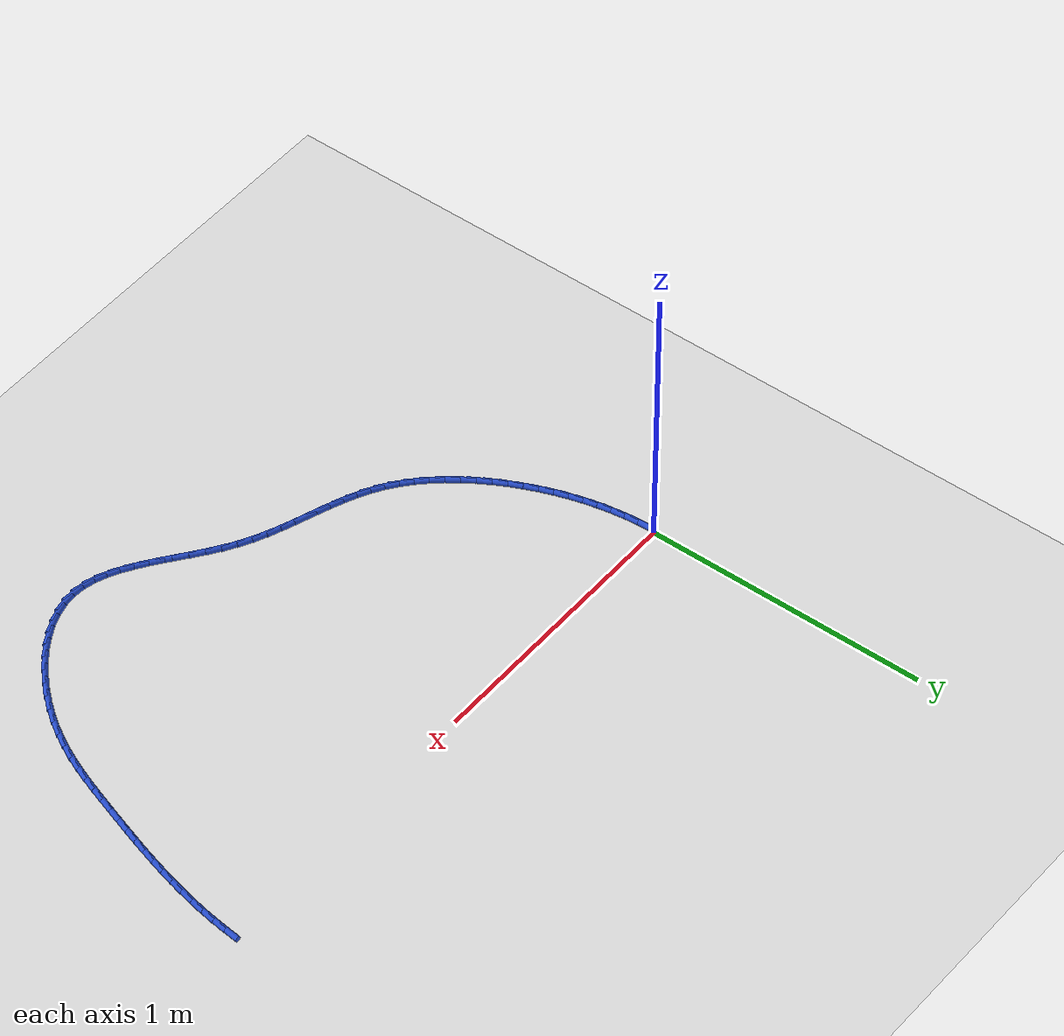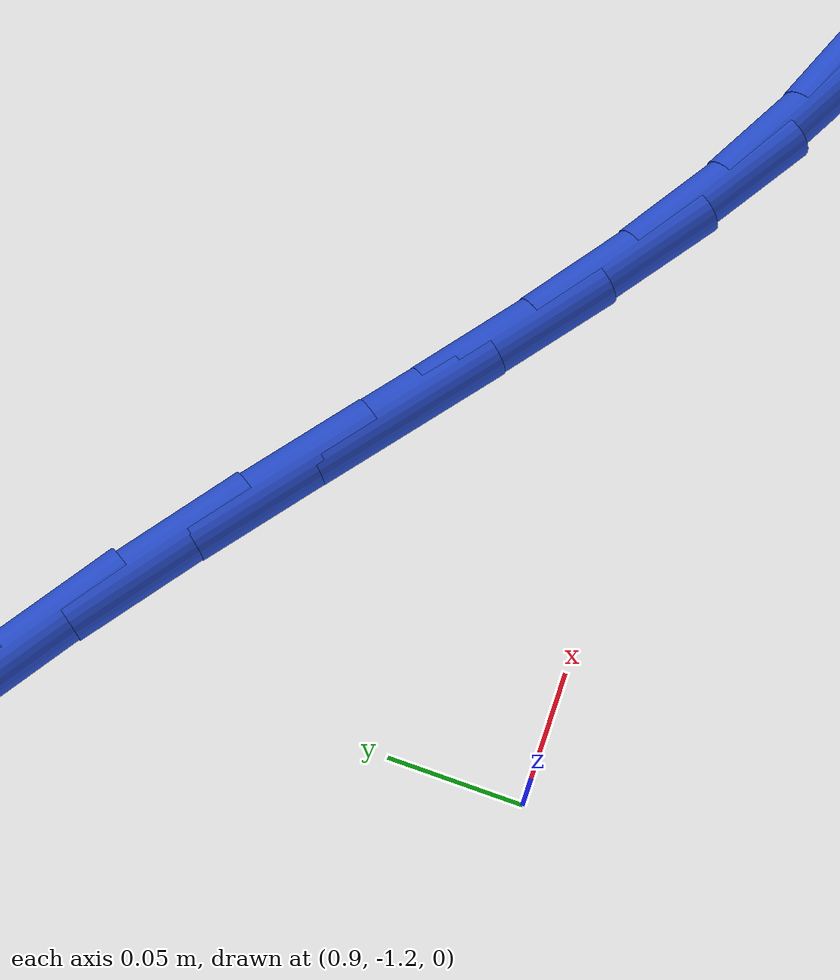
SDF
<sdf version="1.6">
 <world name="default">
  <model name="ground_plane">
   <static>1</static>
   <link name="link">
    <collision name="collision">
     <geometry><plane><normal>0 0 1</normal><size>100 100</size></plane></geometry>
     <surface><friction><ode><mu>100</mu><mu2>50</mu2></ode></friction></surface>
    </collision>
    <visual name="visual">
     <cast_shadows>0</cast_shadows>
     <geometry><plane><normal>0 0 1</normal><size>100 100</size></plane></geometry>
     <material>
      <script><uri>file://media/materials/scripts/gazebo.material</uri><name>Gazebo/WhiteGlow</name></script>
     </material>
    </visual>
   </link>
  </model>
  <model name="line">
   <link name="link_69">
    <pose>2.0538221448049563 -0.010436219579469096 0.01 0 1.57 1.4522254163975166</pose>
    <collision name="collision">
     <geometry><cylinder><radius>0.01</radius><length>0.08</length></cylinder></geometry>
    </collision>
    <visual name="visual">
     <material>
      <script><name>Gazebo/Blue</name><uri>file://media/materials/scripts/gazebo.material</uri></script>
     </material>
     <geometry><cylinder><radius>0.01</radius><length>0.08</length></cylinder></geometry>
    </visual>
   </link>
   <link name="link_70">
    <pose>2.047916145970382 -0.060012420350824346 0.01 0 1.57 1.4209821458318201</pose>
    <collision name="collision">
     <geometry><cylinder><radius>0.01</radius><length>0.08</length></cylinder></geometry>
    </collision>
    <visual name="visual">
     <material>
      <script><name>Gazebo/Blue</name><uri>file://media/materials/scripts/gazebo.material</uri></script>
     </material>
     <geometry><cylinder><radius>0.01</radius><length>0.08</length></cylinder></geometry>
    </visual>
   </link>
   <link name="link_71">
    <pose>2.0405185952522613 -0.1090206212282597 0.01 0 1.57 1.39201190825248</pose>
    <collision name="collision">
     <geometry><cylinder><radius>0.01</radius><length>0.08</length></cylinder></geometry>
    </collision>
    <visual name="visual">
     <material>
      <script><name>Gazebo/Blue</name><uri>file://media/materials/scripts/gazebo.material</uri></script>
     </material>
     <geometry><cylinder><radius>0.01</radius><length>0.08</length></cylinder></geometry>
    </visual>
   </link>
   <link name="link_72">
    <pose>2.0317578812958765 -0.15749896409623826 0.01 0 1.57 1.3654353971454807</pose>
    <collision name="collision">
     <geometry><cylinder><radius>0.01</radius><length>0.08</length></cylinder></geometry>
    </collision>
    <visual name="visual">
     <material>
      <script><name>Gazebo/Blue</name><uri>file://media/materials/scripts/gazebo.material</uri></script>
     </material>
     <geometry><cylinder><radius>0.01</radius><length>0.08</length></cylinder></geometry>
    </visual>
   </link>
   <link name="link_73">
    <pose>2.0217623927465103 -0.2054855908392234 0.01 0 1.57 1.3413483488446771</pose>
    <collision name="collision">
     <geometry><cylinder><radius>0.01</radius><length>0.08</length></cylinder></geometry>
    </collision>
    <visual name="visual">
     <material>
      <script><name>Gazebo/Blue</name><uri>file://media/materials/scripts/gazebo.material</uri></script>
     </material>
     <geometry><cylinder><radius>0.01</radius><length>0.08</length></cylinder></geometry>
    </visual>
   </link>
   <link name="link_74">
    <pose>2.010660518249443 -0.2530186433416763 0.01 0 1.57 1.3198248910323733</pose>
    <collision name="collision">
     <geometry><cylinder><radius>0.01</radius><length>0.08</length></cylinder></geometry>
    </collision>
    <visual name="visual">
     <material>
      <script><name>Gazebo/Blue</name><uri>file://media/materials/scripts/gazebo.material</uri></script>
     </material>
     <geometry><cylinder><radius>0.01</radius><length>0.08</length></cylinder></geometry>
    </visual>
   </link>
   <link name="link_75">
    <pose>1.9985806464499571 -0.3001362634880604 0.01 0 1.57 1.3009212516885558</pose>
    <collision name="collision">
     <geometry><cylinder><radius>0.01</radius><length>0.08</length></cylinder></geometry>
    </collision>
    <visual name="visual">
     <material>
      <script><name>Gazebo/Blue</name><uri>file://media/materials/scripts/gazebo.material</uri></script>
     </material>
     <geometry><cylinder><radius>0.01</radius><length>0.08</length></cylinder></geometry>
    </visual>
   </link>
   <link name="link_76">
    <pose>1.9856511659933358 -0.3468765931628384 0.01 0 1.57 1.284679543516372</pose>
    <collision name="collision">
     <geometry><cylinder><radius>0.01</radius><length>0.08</length></cylinder></geometry>
    </collision>
    <visual name="visual">
     <material>
      <script><name>Gazebo/Blue</name><uri>file://media/materials/scripts/gazebo.material</uri></script>
     </material>
     <geometry><cylinder><radius>0.01</radius><length>0.08</length></cylinder></geometry>
    </visual>
   </link>
   <link name="link_77">
    <pose>1.9720004655248597 -0.393277774250473 0.01 0 1.57 1.2711313987236612</pose>
    <collision name="collision">
     <geometry><cylinder><radius>0.01</radius><length>0.08</length></cylinder></geometry>
    </collision>
    <visual name="visual">
     <material>
      <script><name>Gazebo/Blue</name><uri>file://media/materials/scripts/gazebo.material</uri></script>
     </material>
     <geometry><cylinder><radius>0.01</radius><length>0.08</length></cylinder></geometry>
    </visual>
   </link>
   <link name="link_78">
    <pose>1.957756933689811 -0.43937794863542773 0.01 0 1.57 1.2603012883070623</pose>
    <collision name="collision">
     <geometry><cylinder><radius>0.01</radius><length>0.08</length></cylinder></geometry>
    </collision>
    <visual name="visual">
     <material>
      <script><name>Gazebo/Blue</name><uri>file://media/materials/scripts/gazebo.material</uri></script>
     </material>
     <geometry><cylinder><radius>0.01</radius><length>0.08</length></cylinder></geometry>
    </visual>
   </link>
   <link name="link_79">
    <pose>1.943048959133472 -0.4852152582021636 0.01 0 1.57 1.2522094112883007</pose>
    <collision name="collision">
     <geometry><cylinder><radius>0.01</radius><length>0.08</length></cylinder></geometry>
    </collision>
    <visual name="visual">
     <material>
      <script><name>Gazebo/Blue</name><uri>file://media/materials/scripts/gazebo.material</uri></script>
     </material>
     <geometry><cylinder><radius>0.01</radius><length>0.08</length></cylinder></geometry>
    </visual>
   </link>
   <link name="link_80">
    <pose>1.9280049305011242 -0.530827844835144 0.01 0 1.57 1.24687407889715</pose>
    <collision name="collision">
     <geometry><cylinder><radius>0.01</radius><length>0.08</length></cylinder></geometry>
    </collision>
    <visual name="visual">
     <material>
      <script><name>Gazebo/Blue</name><uri>file://media/materials/scripts/gazebo.material</uri></script>
     </material>
     <geometry><cylinder><radius>0.01</radius><length>0.08</length></cylinder></geometry>
    </visual>
   </link>
   <link name="link_81">
    <pose>1.9127532364380497 -0.5762538504188318 0.01 0 1.57 1.2441341679801499</pose>
    <collision name="collision">
     <geometry><cylinder><radius>0.01</radius><length>0.08</length></cylinder></geometry>
    </collision>
    <visual name="visual">
     <material>
      <script><name>Gazebo/Blue</name><uri>file://media/materials/scripts/gazebo.material</uri></script>
     </material>
     <geometry><cylinder><radius>0.01</radius><length>0.08</length></cylinder></geometry>
    </visual>
   </link>
   <link name="link_82">
    <pose>1.897413605455581 -0.6215302558179849 0.01 0 1.57 1.2385742932887691</pose>
    <collision name="collision">
     <geometry><cylinder><radius>0.01</radius><length>0.08</length></cylinder></geometry>
    </collision>
    <visual name="visual">
     <material>
      <script><name>Gazebo/Blue</name><uri>file://media/materials/scripts/gazebo.material</uri></script>
     </material>
     <geometry><cylinder><radius>0.01</radius><length>0.08</length></cylinder></geometry>
    </visual>
   </link>
   <link name="link_83">
    <pose>1.881843787986128 -0.6666589198410778 0.01 0 1.57 1.2239502533319593</pose>
    <collision name="collision">
     <geometry><cylinder><radius>0.01</radius><length>0.08</length></cylinder></geometry>
    </collision>
    <visual name="visual">
     <material>
      <script><name>Gazebo/Blue</name><uri>file://media/materials/scripts/gazebo.material</uri></script>
     </material>
     <geometry><cylinder><radius>0.01</radius><length>0.08</length></cylinder></geometry>
    </visual>
   </link>
   <link name="link_84">
    <pose>1.8655990413877728 -0.711601147602838 0.01 0 1.57 1.200057954285988</pose>
    <collision name="collision">
     <geometry><cylinder><radius>0.01</radius><length>0.08</length></cylinder></geometry>
    </collision>
    <visual name="visual">
     <material>
      <script><name>Gazebo/Blue</name><uri>file://media/materials/scripts/gazebo.material</uri></script>
     </material>
     <geometry><cylinder><radius>0.01</radius><length>0.08</length></cylinder></geometry>
    </visual>
   </link>
   <link name="link_85">
    <pose>1.848217807325559 -0.7563159898243439 0.01 0 1.57 1.1672210607373954</pose>
    <collision name="collision">
     <geometry><cylinder><radius>0.01</radius><length>0.08</length></cylinder></geometry>
    </collision>
    <visual name="visual">
     <material>
      <script><name>Gazebo/Blue</name><uri>file://media/materials/scripts/gazebo.material</uri></script>
     </material>
     <geometry><cylinder><radius>0.01</radius><length>0.08</length></cylinder></geometry>
    </visual>
   </link>
   <link name="link_86">
    <pose>1.8292385274645269 -0.8007624972266731 0.01 0 1.57 1.1259864175706435</pose>
    <collision name="collision">
     <geometry><cylinder><radius>0.01</radius><length>0.08</length></cylinder></geometry>
    </collision>
    <visual name="visual">
     <material>
      <script><name>Gazebo/Blue</name><uri>file://media/materials/scripts/gazebo.material</uri></script>
     </material>
     <geometry><cylinder><radius>0.01</radius><length>0.08</length></cylinder></geometry>
    </visual>
   </link>
   <link name="link_87">
    <pose>1.8081996434697185 -0.8448997205309043 0.01 0 1.57 1.077165963917169</pose>
    <collision name="collision">
     <geometry><cylinder><radius>0.01</radius><length>0.08</length></cylinder></geometry>
    </collision>
    <visual name="visual">
     <material>
      <script><name>Gazebo/Blue</name><uri>file://media/materials/scripts/gazebo.material</uri></script>
     </material>
     <geometry><cylinder><radius>0.01</radius><length>0.08</length></cylinder></geometry>
    </visual>
   </link>
   <link name="link_88">
    <pose>1.7846395970061766 -0.888686710458114 0.01 0 1.57 1.021859325094769</pose>
    <collision name="collision">
     <geometry><cylinder><radius>0.01</radius><length>0.08</length></cylinder></geometry>
    </collision>
    <visual name="visual">
     <material>
      <script><name>Gazebo/Blue</name><uri>file://media/materials/scripts/gazebo.material</uri></script>
     </material>
     <geometry><cylinder><radius>0.01</radius><length>0.08</length></cylinder></geometry>
    </visual>
   </link>
   <link name="link_89">
    <pose>1.758096829738943 -0.9320825177293809 0.01 0 1.57 0.9619548756649698</pose>
    <collision name="collision">
     <geometry><cylinder><radius>0.01</radius><length>0.08</length></cylinder></geometry>
    </collision>
    <visual name="visual">
     <material>
      <script><name>Gazebo/Blue</name><uri>file://media/materials/scripts/gazebo.material</uri></script>
     </material>
     <geometry><cylinder><radius>0.01</radius><length>0.08</length></cylinder></geometry>
    </visual>
   </link>
   <link name="link_90">
    <pose>1.7281741307879246 -0.9750011643839988 0.01 0 1.57 0.9021735652837843</pose>
    <collision name="collision">
     <geometry><cylinder><radius>0.01</radius><length>0.08</length></cylinder></geometry>
    </collision>
    <visual name="visual">
     <material>
      <script><name>Gazebo/Blue</name><uri>file://media/materials/scripts/gazebo.material</uri></script>
     </material>
     <geometry><cylinder><radius>0.01</radius><length>0.08</length></cylinder></geometry>
    </visual>
   </link>
   <link name="link_91">
    <pose>1.6950073276309856 -1.0169836660284508 0.01 0 1.57 0.8428026870314624</pose>
    <collision name="collision">
     <geometry><cylinder><radius>0.01</radius><length>0.08</length></cylinder></geometry>
    </collision>
    <visual name="visual">
     <material>
      <script><name>Gazebo/Blue</name><uri>file://media/materials/scripts/gazebo.material</uri></script>
     </material>
     <geometry><cylinder><radius>0.01</radius><length>0.08</length></cylinder></geometry>
    </visual>
   </link>
   <link name="link_92">
    <pose>1.6589956579777332 -1.057386710613545 0.01 0 1.57 0.7817906324800181</pose>
    <collision name="collision">
     <geometry><cylinder><radius>0.01</radius><length>0.08</length></cylinder></geometry>
    </collision>
    <visual name="visual">
     <material>
      <script><name>Gazebo/Blue</name><uri>file://media/materials/scripts/gazebo.material</uri></script>
     </material>
     <geometry><cylinder><radius>0.01</radius><length>0.08</length></cylinder></geometry>
    </visual>
   </link>
   <link name="link_93">
    <pose>1.6205402274674232 -1.0955656789613162 0.01 0 1.57 0.7170714353190663</pose>
    <collision name="collision">
     <geometry><cylinder><radius>0.01</radius><length>0.08</length></cylinder></geometry>
    </collision>
    <visual name="visual">
     <material>
      <script><name>Gazebo/Blue</name><uri>file://media/materials/scripts/gazebo.material</uri></script>
     </material>
     <geometry><cylinder><radius>0.01</radius><length>0.08</length></cylinder></geometry>
    </visual>
   </link>
   <link name="link_94">
    <pose>1.5800421417393125 -1.1308759518937983 0.01 0 1.57 0.6464142626570827</pose>
    <collision name="collision">
     <geometry><cylinder><radius>0.01</radius><length>0.08</length></cylinder></geometry>
    </collision>
    <visual name="visual">
     <material>
      <script><name>Gazebo/Blue</name><uri>file://media/materials/scripts/gazebo.material</uri></script>
     </material>
     <geometry><cylinder><radius>0.01</radius><length>0.08</length></cylinder></geometry>
    </visual>
   </link>
   <link name="link_95">
    <pose>1.537902506432656 -1.1626729102330255 0.01 0 1.57 0.5672790024577486</pose>
    <collision name="collision">
     <geometry><cylinder><radius>0.01</radius><length>0.08</length></cylinder></geometry>
    </collision>
    <visual name="visual">
     <material>
      <script><name>Gazebo/Blue</name><uri>file://media/materials/scripts/gazebo.material</uri></script>
     </material>
     <geometry><cylinder><radius>0.01</radius><length>0.08</length></cylinder></geometry>
    </visual>
   </link>
   <link name="link_96">
    <pose>1.4945224271867117 -1.1903119348010314 0.01 0 1.57 0.4767092942284722</pose>
    <collision name="collision">
     <geometry><cylinder><radius>0.01</radius><length>0.08</length></cylinder></geometry>
    </collision>
    <visual name="visual">
     <material>
      <script><name>Gazebo/Blue</name><uri>file://media/materials/scripts/gazebo.material</uri></script>
     </material>
     <geometry><cylinder><radius>0.01</radius><length>0.08</length></cylinder></geometry>
    </visual>
   </link>
   <link name="link_97">
    <pose>1.4503030096407363 -1.21314840641985 0.01 0 1.57 0.3713276064531596</pose>
    <collision name="collision">
     <geometry><cylinder><radius>0.01</radius><length>0.08</length></cylinder></geometry>
    </collision>
    <visual name="visual">
     <material>
      <script><name>Gazebo/Blue</name><uri>file://media/materials/scripts/gazebo.material</uri></script>
     </material>
     <geometry><cylinder><radius>0.01</radius><length>0.08</length></cylinder></geometry>
    </visual>
   </link>
   <link name="link_98">
    <pose>1.4056453594339857 -1.2305377059115155 0.01 0 1.57 0.24758421453411017</pose>
    <collision name="collision">
     <geometry><cylinder><radius>0.01</radius><length>0.08</length></cylinder></geometry>
    </collision>
    <visual name="visual">
     <material>
      <script><name>Gazebo/Blue</name><uri>file://media/materials/scripts/gazebo.material</uri></script>
     </material>
     <geometry><cylinder><radius>0.01</radius><length>0.08</length></cylinder></geometry>
    </visual>
   </link>
   <link name="link_99">
    <pose>1.3609505822057169 -1.2418352140980615 0.01 0 1.57 0.1025270211169273</pose>
    <collision name="collision">
     <geometry><cylinder><radius>0.01</radius><length>0.08</length></cylinder></geometry>
    </collision>
    <visual name="visual">
     <material>
      <script><name>Gazebo/Blue</name><uri>file://media/materials/scripts/gazebo.material</uri></script>
     </material>
     <geometry><cylinder><radius>0.01</radius><length>0.08</length></cylinder></geometry>
    </visual>
   </link>
   <link name="link_100">
    <pose>1.316619783595185 -1.2463963118015227 0.01 0 1.57 -0.06399287026738837</pose>
    <collision name="collision">
     <geometry><cylinder><radius>0.01</radius><length>0.08</length></cylinder></geometry>
    </collision>
    <visual name="visual">
     <material>
      <script><name>Gazebo/Blue</name><uri>file://media/materials/scripts/gazebo.material</uri></script>
     </material>
     <geometry><cylinder><radius>0.01</radius><length>0.08</length></cylinder></geometry>
    </visual>
   </link>
   <link name="link_101">
    <pose>1.2730443697469924 -1.2436039833455557 0.01 0 1.57 -0.22993346029765205</pose>
    <collision name="collision">
     <geometry><cylinder><radius>0.01</radius><length>0.08</length></cylinder></geometry>
    </collision>
    <visual name="visual">
     <material>
      <script><name>Gazebo/Blue</name><uri>file://media/materials/scripts/gazebo.material</uri></script>
     </material>
     <geometry><cylinder><radius>0.01</radius><length>0.08</length></cylinder></geometry>
    </visual>
   </link>
   <link name="link_102">
    <pose>1.230345817230747 -1.2336093975547848 0.01 0 1.57 -0.3680389901322427</pose>
    <collision name="collision">
     <geometry><cylinder><radius>0.01</radius><length>0.08</length></cylinder></geometry>
    </collision>
    <visual name="visual">
     <material>
      <script><name>Gazebo/Blue</name><uri>file://media/materials/scripts/gazebo.material</uri></script>
     </material>
     <geometry><cylinder><radius>0.01</radius><length>0.08</length></cylinder></geometry>
    </visual>
   </link>
   <link name="link_103">
    <pose>1.1883467603910327 -1.2174141894004336 0.01 0 1.57 -0.4752226675521042</pose>
    <collision name="collision">
     <geometry><cylinder><radius>0.01</radius><length>0.08</length></cylinder></geometry>
    </collision>
    <visual name="visual">
     <material>
      <script><name>Gazebo/Blue</name><uri>file://media/materials/scripts/gazebo.material</uri></script>
     </material>
     <geometry><cylinder><radius>0.01</radius><length>0.08</length></cylinder></geometry>
    </visual>
   </link>
   <link name="link_104">
    <pose>1.1468543327725211 -1.196064107116396 0.01 0 1.57 -0.5537394114600869</pose>
    <collision name="collision">
     <geometry><cylinder><radius>0.01</radius><length>0.08</length></cylinder></geometry>
    </collision>
    <visual name="visual">
     <material>
      <script><name>Gazebo/Blue</name><uri>file://media/materials/scripts/gazebo.material</uri></script>
     </material>
     <geometry><cylinder><radius>0.01</radius><length>0.08</length></cylinder></geometry>
    </visual>
   </link>
   <link name="link_105">
    <pose>1.1056756679198863 -1.1706048989365667 0.01 0 1.57 -0.6071560129517121</pose>
    <collision name="collision">
     <geometry><cylinder><radius>0.01</radius><length>0.08</length></cylinder></geometry>
    </collision>
    <visual name="visual">
     <material>
      <script><name>Gazebo/Blue</name><uri>file://media/materials/scripts/gazebo.material</uri></script>
     </material>
     <geometry><cylinder><radius>0.01</radius><length>0.08</length></cylinder></geometry>
    </visual>
   </link>
   <link name="link_106">
    <pose>1.0646178993778004 -1.1420823130948394 0.01 0 1.57 -0.6387054990458366</pose>
    <collision name="collision">
     <geometry><cylinder><radius>0.01</radius><length>0.08</length></cylinder></geometry>
    </collision>
    <visual name="visual">
     <material>
      <script><name>Gazebo/Blue</name><uri>file://media/materials/scripts/gazebo.material</uri></script>
     </material>
     <geometry><cylinder><radius>0.01</radius><length>0.08</length></cylinder></geometry>
    </visual>
   </link>
   <link name="link_107">
    <pose>1.0234881606909363 -1.1115420978251085 0.01 0 1.57 -0.6506695957689227</pose>
    <collision name="collision">
     <geometry><cylinder><radius>0.01</radius><length>0.08</length></cylinder></geometry>
    </collision>
    <visual name="visual">
     <material>
      <script><name>Gazebo/Blue</name><uri>file://media/materials/scripts/gazebo.material</uri></script>
     </material>
     <geometry><cylinder><radius>0.01</radius><length>0.08</length></cylinder></geometry>
    </visual>
   </link>
   <link name="link_108">
    <pose>0.9820935854039665 -1.0800300013612678 0.01 0 1.57 -0.6442503055843277</pose>
    <collision name="collision">
     <geometry><cylinder><radius>0.01</radius><length>0.08</length></cylinder></geometry>
    </collision>
    <visual name="visual">
     <material>
      <script><name>Gazebo/Blue</name><uri>file://media/materials/scripts/gazebo.material</uri></script>
     </material>
     <geometry><cylinder><radius>0.01</radius><length>0.08</length></cylinder></geometry>
    </visual>
   </link>
   <link name="link_109">
    <pose>0.940241307061564 -1.0485917719372118 0.01 0 1.57 -0.6196172616390117</pose>
    <collision name="collision">
     <geometry><cylinder><radius>0.01</radius><length>0.08</length></cylinder></geometry>
    </collision>
    <visual name="visual">
     <material>
      <script><name>Gazebo/Blue</name><uri>file://media/materials/scripts/gazebo.material</uri></script>
     </material>
     <geometry><cylinder><radius>0.01</radius><length>0.08</length></cylinder></geometry>
    </visual>
   </link>
   <link name="link_110">
    <pose>0.8977384592084018 -1.0182731577868347 0.01 0 1.57 -0.5760210390486895</pose>
    <collision name="collision">
     <geometry><cylinder><radius>0.01</radius><length>0.08</length></cylinder></geometry>
    </collision>
    <visual name="visual">
     <material>
      <script><name>Gazebo/Blue</name><uri>file://media/materials/scripts/gazebo.material</uri></script>
     </material>
     <geometry><cylinder><radius>0.01</radius><length>0.08</length></cylinder></geometry>
    </visual>
   </link>
   <link name="link_111">
    <pose>0.8543921753891527 -0.9901199071440305 0.01 0 1.57 -0.5131054288237891</pose>
    <collision name="collision">
     <geometry><cylinder><radius>0.01</radius><length>0.08</length></cylinder></geometry>
    </collision>
    <visual name="visual">
     <material>
      <script><name>Gazebo/Blue</name><uri>file://media/materials/scripts/gazebo.material</uri></script>
     </material>
     <geometry><cylinder><radius>0.01</radius><length>0.08</length></cylinder></geometry>
    </visual>
   </link>
   <link name="link_112">
    <pose>0.8100253319686729 -0.9651217248747942 0.01 0 1.57 -0.4481453244298944</pose>
    <collision name="collision">
     <geometry><cylinder><radius>0.01</radius><length>0.08</length></cylinder></geometry>
    </collision>
    <visual name="visual">
     <material>
      <script><name>Gazebo/Blue</name><uri>file://media/materials/scripts/gazebo.material</uri></script>
     </material>
     <geometry><cylinder><radius>0.01</radius><length>0.08</length></cylinder></geometry>
    </visual>
   </link>
   <link name="link_113">
    <pose>0.7647213127957116 -0.9433409269408355 0.01 0 1.57 -0.3970170901570558</pose>
    <collision name="collision">
     <geometry><cylinder><radius>0.01</radius><length>0.08</length></cylinder></geometry>
    </collision>
    <visual name="visual">
     <material>
      <script><name>Gazebo/Blue</name><uri>file://media/materials/scripts/gazebo.material</uri></script>
     </material>
     <geometry><cylinder><radius>0.01</radius><length>0.08</length></cylinder></geometry>
    </visual>
   </link>
   <link name="link_114">
    <pose>0.7187776192981551 -0.9240775853017577 0.01 0 1.57 -0.36092117084973685</pose>
    <collision name="collision">
     <geometry><cylinder><radius>0.01</radius><length>0.08</length></cylinder></geometry>
    </collision>
    <visual name="visual">
     <material>
      <script><name>Gazebo/Blue</name><uri>file://media/materials/scripts/gazebo.material</uri></script>
     </material>
     <geometry><cylinder><radius>0.01</radius><length>0.08</length></cylinder></geometry>
    </visual>
   </link>
   <link name="link_115">
    <pose>0.6724981057480377 -0.9066091562245648 0.01 0 1.57 -0.3402683125014607</pose>
    <collision name="collision">
     <geometry><cylinder><radius>0.01</radius><length>0.08</length></cylinder></geometry>
    </collision>
    <visual name="visual">
     <material>
      <script><name>Gazebo/Blue</name><uri>file://media/materials/scripts/gazebo.material</uri></script>
     </material>
     <geometry><cylinder><radius>0.01</radius><length>0.08</length></cylinder></geometry>
    </visual>
   </link>
   <link name="link_116">
    <pose>0.6261866264173936 -0.8902130959762619 0.01 0 1.57 -0.3353657381640888</pose>
    <collision name="collision">
     <geometry><cylinder><radius>0.01</radius><length>0.08</length></cylinder></geometry>
    </collision>
    <visual name="visual">
     <material>
      <script><name>Gazebo/Blue</name><uri>file://media/materials/scripts/gazebo.material</uri></script>
     </material>
     <geometry><cylinder><radius>0.01</radius><length>0.08</length></cylinder></geometry>
    </visual>
   </link>
   <link name="link_117">
    <pose>0.580147035578257 -0.8741668608238533 0.01 0 1.57 -0.3465671386727558</pose>
    <collision name="collision">
     <geometry><cylinder><radius>0.01</radius><length>0.08</length></cylinder></geometry>
    </collision>
    <visual name="visual">
     <material>
      <script><name>Gazebo/Blue</name><uri>file://media/materials/scripts/gazebo.material</uri></script>
     </material>
     <geometry><cylinder><radius>0.01</radius><length>0.08</length></cylinder></geometry>
    </visual>
   </link>
   <link name="link_118">
    <pose>0.5346831875026642 -0.8577479070343447 0.01 0 1.57 -0.37431369327039044</pose>
    <collision name="collision">
     <geometry><cylinder><radius>0.01</radius><length>0.08</length></cylinder></geometry>
    </collision>
    <visual name="visual">
     <material>
      <script><name>Gazebo/Blue</name><uri>file://media/materials/scripts/gazebo.material</uri></script>
     </material>
     <geometry><cylinder><radius>0.01</radius><length>0.08</length></cylinder></geometry>
    </visual>
   </link>
   <link name="link_119">
    <pose>0.49009893646264857 -0.8402336908747402 0.01 0 1.57 -0.419047095800878</pose>
    <collision name="collision">
     <geometry><cylinder><radius>0.01</radius><length>0.08</length></cylinder></geometry>
    </collision>
    <visual name="visual">
     <material>
      <script><name>Gazebo/Blue</name><uri>file://media/materials/scripts/gazebo.material</uri></script>
     </material>
     <geometry><cylinder><radius>0.01</radius><length>0.08</length></cylinder></geometry>
    </visual>
   </link>
   <link name="link_120">
    <pose>0.44669813673024544 -0.8209016686120453 0.01 0 1.57 -0.4809709574966306</pose>
    <collision name="collision">
     <geometry><cylinder><radius>0.01</radius><length>0.08</length></cylinder></geometry>
    </collision>
    <visual name="visual">
     <material>
      <script><name>Gazebo/Blue</name><uri>file://media/materials/scripts/gazebo.material</uri></script>
     </material>
     <geometry><cylinder><radius>0.01</radius><length>0.08</length></cylinder></geometry>
    </visual>
   </link>
   <link name="link_121">
    <pose>0.40478464257748914 -0.7990292965132643 0.01 0 1.57 -0.5595503284218157</pose>
    <collision name="collision">
     <geometry><cylinder><radius>0.01</radius><length>0.08</length></cylinder></geometry>
    </collision>
    <visual name="visual">
     <material>
      <script><name>Gazebo/Blue</name><uri>file://media/materials/scripts/gazebo.material</uri></script>
     </material>
     <geometry><cylinder><radius>0.01</radius><length>0.08</length></cylinder></geometry>
    </visual>
   </link>
   <link name="link_122">
    <pose>0.3646610156230927 -0.7738989344924396 0.01 0 1.57 -0.6456759300041227</pose>
    <collision name="collision">
     <geometry><cylinder><radius>0.01</radius><length>0.08</length></cylinder></geometry>
    </collision>
    <visual name="visual">
     <material>
      <script><name>Gazebo/Blue</name><uri>file://media/materials/scripts/gazebo.material</uri></script>
     </material>
     <geometry><cylinder><radius>0.01</radius><length>0.08</length></cylinder></geometry>
    </visual>
   </link>
   <link name="link_123">
    <pose>0.3265301565624392 -0.745171003606177 0.01 0 1.57 -0.7255987686364861</pose>
    <collision name="collision">
     <geometry><cylinder><radius>0.01</radius><length>0.08</length></cylinder></geometry>
    </collision>
    <visual name="visual">
     <material>
      <script><name>Gazebo/Blue</name><uri>file://media/materials/scripts/gazebo.material</uri></script>
     </material>
     <geometry><cylinder><radius>0.01</radius><length>0.08</length></cylinder></geometry>
    </visual>
   </link>
   <link name="link_124">
    <pose>0.29042623264822537 -0.7131460108745364 0.01 0 1.57 -0.7984445823726164</pose>
    <collision name="collision">
     <geometry><cylinder><radius>0.01</radius><length>0.08</length></cylinder></geometry>
    </collision>
    <visual name="visual">
     <material>
      <script><name>Gazebo/Blue</name><uri>file://media/materials/scripts/gazebo.material</uri></script>
     </material>
     <geometry><cylinder><radius>0.01</radius><length>0.08</length></cylinder></geometry>
    </visual>
   </link>
   <link name="link_125">
    <pose>0.2563670916511863 -0.6781863708515476 0.01 0 1.57 -0.864843588198756</pose>
    <collision name="collision">
     <geometry><cylinder><radius>0.01</radius><length>0.08</length></cylinder></geometry>
    </collision>
    <visual name="visual">
     <material>
      <script><name>Gazebo/Blue</name><uri>file://media/materials/scripts/gazebo.material</uri></script>
     </material>
     <geometry><cylinder><radius>0.01</radius><length>0.08</length></cylinder></geometry>
    </visual>
   </link>
   <link name="link_126">
    <pose>0.2243705813420569 -0.6406544980912405 0.01 0 1.57 -0.9255299269519569</pose>
    <collision name="collision">
     <geometry><cylinder><radius>0.01</radius><length>0.08</length></cylinder></geometry>
    </collision>
    <visual name="visual">
     <material>
      <script><name>Gazebo/Blue</name><uri>file://media/materials/scripts/gazebo.material</uri></script>
     </material>
     <geometry><cylinder><radius>0.01</radius><length>0.08</length></cylinder></geometry>
    </visual>
   </link>
   <link name="link_127">
    <pose>0.19445454949157323 -0.6009128071476465 0.01 0 1.57 -0.9812697576279191</pose>
    <collision name="collision">
     <geometry><cylinder><radius>0.01</radius><length>0.08</length></cylinder></geometry>
    </collision>
    <visual name="visual">
     <material>
      <script><name>Gazebo/Blue</name><uri>file://media/materials/scripts/gazebo.material</uri></script>
     </material>
     <geometry><cylinder><radius>0.01</radius><length>0.08</length></cylinder></geometry>
    </visual>
   </link>
   <link name="link_128">
    <pose>0.16663684387047 -0.5593237125747949 0.01 0 1.57 -1.0328200828209646</pose>
    <collision name="collision">
     <geometry><cylinder><radius>0.01</radius><length>0.08</length></cylinder></geometry>
    </collision>
    <visual name="visual">
     <material>
      <script><name>Gazebo/Blue</name><uri>file://media/materials/scripts/gazebo.material</uri></script>
     </material>
     <geometry><cylinder><radius>0.01</radius><length>0.08</length></cylinder></geometry>
    </visual>
   </link>
   <link name="link_129">
    <pose>0.14093531224948244 -0.5162496289267157 0.01 0 1.57 -1.0809101905792453</pose>
    <collision name="collision">
     <geometry><cylinder><radius>0.01</radius><length>0.08</length></cylinder></geometry>
    </collision>
    <visual name="visual">
     <material>
      <script><name>Gazebo/Blue</name><uri>file://media/materials/scripts/gazebo.material</uri></script>
     </material>
     <geometry><cylinder><radius>0.01</radius><length>0.08</length></cylinder></geometry>
    </visual>
   </link>
   <link name="link_130">
    <pose>0.11736780239934574 -0.4720529707574393 0.01 0 1.57 -1.126240345700676</pose>
    <collision name="collision">
     <geometry><cylinder><radius>0.01</radius><length>0.08</length></cylinder></geometry>
    </collision>
    <visual name="visual">
     <material>
      <script><name>Gazebo/Blue</name><uri>file://media/materials/scripts/gazebo.material</uri></script>
     </material>
     <geometry><cylinder><radius>0.01</radius><length>0.08</length></cylinder></geometry>
    </visual>
   </link>
   <link name="link_131">
    <pose>0.09595214885945155 -0.42709593990441924 0.01 0 1.57 -1.1701252316330863</pose>
    <collision name="collision">
     <geometry><cylinder><radius>0.01</radius><length>0.08</length></cylinder></geometry>
    </collision>
    <visual name="visual">
     <material>
      <script><name>Gazebo/Blue</name><uri>file://media/materials/scripts/gazebo.material</uri></script>
     </material>
     <geometry><cylinder><radius>0.01</radius><length>0.08</length></cylinder></geometry>
    </visual>
   </link>
   <link name="link_132">
    <pose>0.07670029922118086 -0.3816460954015749 0.01 0 1.57 -1.2144741177510805</pose>
    <collision name="collision">
     <geometry><cylinder><radius>0.01</radius><length>0.08</length></cylinder></geometry>
    </collision>
    <visual name="visual">
     <material>
      <script><name>Gazebo/Blue</name><uri>file://media/materials/scripts/gazebo.material</uri></script>
     </material>
     <geometry><cylinder><radius>0.01</radius><length>0.08</length></cylinder></geometry>
    </visual>
   </link>
   <link name="link_133">
    <pose>0.05960907650223878 -0.335727842775761 0.01 0 1.57 -1.2593754645246622</pose>
    <collision name="collision">
     <geometry><cylinder><radius>0.01</radius><length>0.08</length></cylinder></geometry>
    </collision>
    <visual name="visual">
     <material>
      <script><name>Gazebo/Blue</name><uri>file://media/materials/scripts/gazebo.material</uri></script>
     </material>
     <geometry><cylinder><radius>0.01</radius><length>0.08</length></cylinder></geometry>
    </visual>
   </link>
   <link name="link_134">
    <pose>0.04467290842630569 -0.2893270790870739 0.01 0 1.57 -1.304613906116409</pose>
    <collision name="collision">
     <geometry><cylinder><radius>0.01</radius><length>0.08</length></cylinder></geometry>
    </collision>
    <visual name="visual">
     <material>
      <script><name>Gazebo/Blue</name><uri>file://media/materials/scripts/gazebo.material</uri></script>
     </material>
     <geometry><cylinder><radius>0.01</radius><length>0.08</length></cylinder></geometry>
    </visual>
   </link>
   <link name="link_135">
    <pose>0.03188622271706185 -0.24242970139560893 0.01 0 1.57 -1.349964702902635</pose>
    <collision name="collision">
     <geometry><cylinder><radius>0.01</radius><length>0.08</length></cylinder></geometry>
    </collision>
    <visual name="visual">
     <material>
      <script><name>Gazebo/Blue</name><uri>file://media/materials/scripts/gazebo.material</uri></script>
     </material>
     <geometry><cylinder><radius>0.01</radius><length>0.08</length></cylinder></geometry>
    </visual>
   </link>
   <link name="link_136">
    <pose>0.021243447098188057 -0.1950216067614638 0.01 0 1.57 -1.3951998964752437</pose>
    <collision name="collision">
     <geometry><cylinder><radius>0.01</radius><length>0.08</length></cylinder></geometry>
    </collision>
    <visual name="visual">
     <material>
      <script><name>Gazebo/Blue</name><uri>file://media/materials/scripts/gazebo.material</uri></script>
     </material>
     <geometry><cylinder><radius>0.01</radius><length>0.08</length></cylinder></geometry>
    </visual>
   </link>
   <link name="link_137">
    <pose>0.012739009293364559 -0.14708869224473423 0.01 0 1.57 -1.4400946869550864</pose>
    <collision name="collision">
     <geometry><cylinder><radius>0.01</radius><length>0.08</length></cylinder></geometry>
    </collision>
    <visual name="visual">
     <material>
      <script><name>Gazebo/Blue</name><uri>file://media/materials/scripts/gazebo.material</uri></script>
     </material>
     <geometry><cylinder><radius>0.01</radius><length>0.08</length></cylinder></geometry>
    </visual>
   </link>
   <link name="link_138">
    <pose>0.006367337026271772 -0.09861685490551637 0.01 0 1.57 -1.4844335921789795</pose>
    <collision name="collision">
     <geometry><cylinder><radius>0.01</radius><length>0.08</length></cylinder></geometry>
    </collision>
    <visual name="visual">
     <material>
      <script><name>Gazebo/Blue</name><uri>file://media/materials/scripts/gazebo.material</uri></script>
     </material>
     <geometry><cylinder><radius>0.01</radius><length>0.08</length></cylinder></geometry>
    </visual>
   </link>
   <link name="link_139">
    <pose>0.002122858020590119 -0.04959199180390643 0.01 0 1.57 -1.528015975978372</pose>
    <collision name="collision">
     <geometry><cylinder><radius>0.01</radius><length>0.08</length></cylinder></geometry>
    </collision>
    <visual name="visual">
     <material>
      <script><name>Gazebo/Blue</name><uri>file://media/materials/scripts/gazebo.material</uri></script>
     </material>
     <geometry><cylinder><radius>0.01</radius><length>0.08</length></cylinder></geometry>
    </visual>
   </link>
  </model>
 </world>
</sdf>
